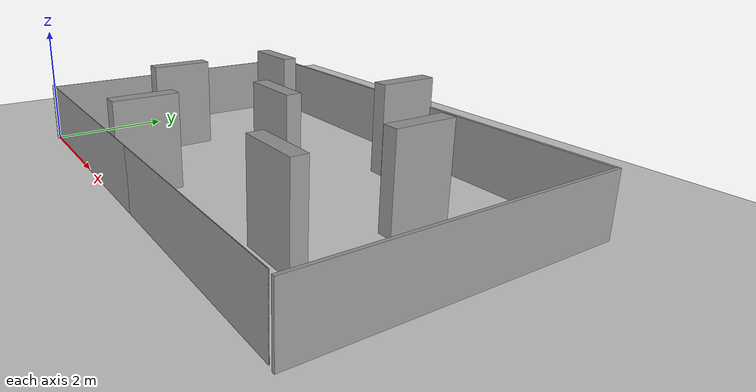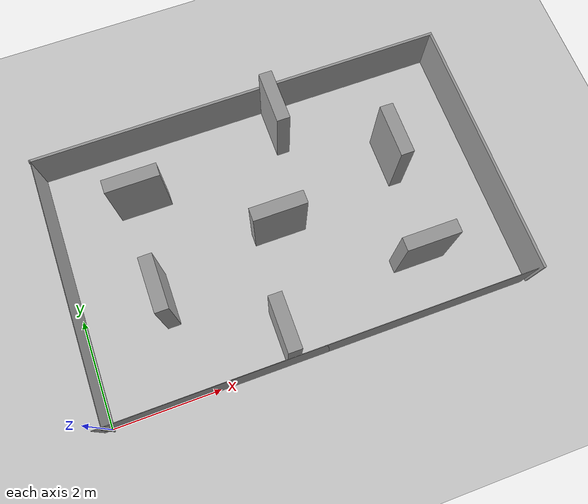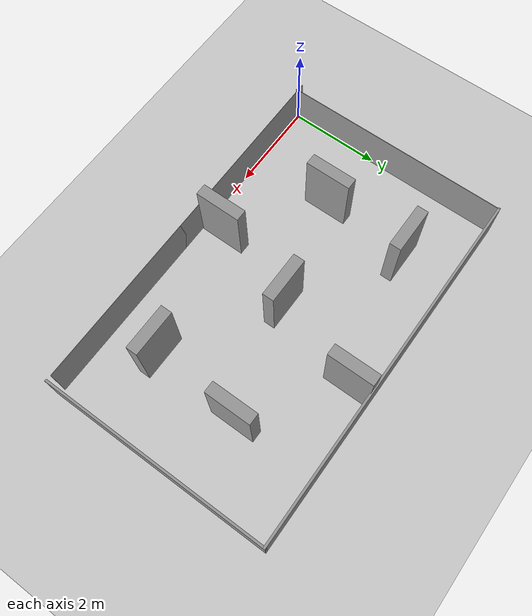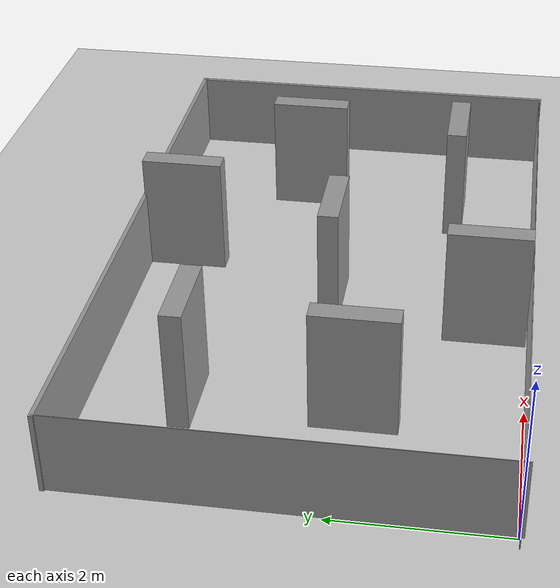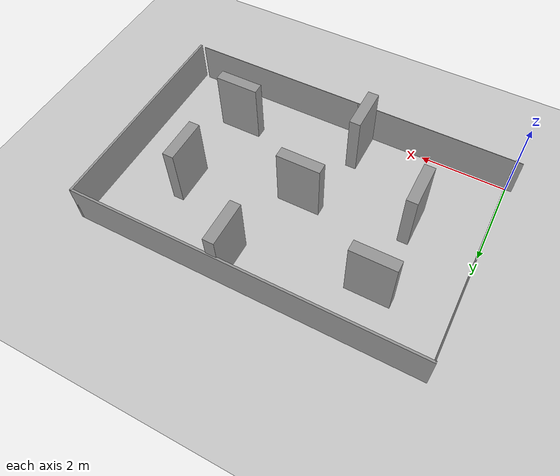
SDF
<sdf version="1.6">
 <world name="default">
  <light name="sun" type="directional">
   <pose>0 0 10 0 -0 0</pose>
   <diffuse>0.8 0.8 0.8 1</diffuse>
   <specular>0.1 0.1 0.1 1</specular>
   <attenuation>
    <range>1000</range>
    <constant>0.9</constant>
    <linear>0.01</linear>
    <quadratic>0.001</quadratic>
   </attenuation>
   <direction>-0.5 0.5 -1</direction>
  </light>
  <model name="ground_plane">
   <static>1</static>
   <link name="link">
    <collision name="collision">
     <geometry><plane><normal>0 0 1</normal><size>100 100</size></plane></geometry>
     <surface><friction><ode><mu>100</mu><mu2>50</mu2></ode></friction></surface>
    </collision>
    <visual name="visual">
     <cast_shadows>0</cast_shadows>
     <geometry><plane><normal>0 0 1</normal><size>100 100</size></plane></geometry>
     <material>
      <script><uri>file://media/materials/scripts/gazebo.material</uri><name>Gazebo/Grey</name></script>
     </material>
    </visual>
   </link>
  </model>
  <gravity>0 0 -9.8</gravity>
  <magnetic_field>6e-06 2.3e-05 -4.2e-05</magnetic_field>
  <atmosphere type="adiabatic"/>
  <physics name="default_physics" default="0" type="ode">
   <max_step_size>0.001</max_step_size>
   <real_time_factor>1</real_time_factor>
   <real_time_update_rate>1000</real_time_update_rate>
  </physics>
  <scene><ambient>0.4 0.4 0.4 1</ambient><background>0.7 0.7 0.7 1</background><shadows>1</shadows></scene>
  <spherical_coordinates>
   <surface_model>EARTH_WGS84</surface_model>
   <latitude_deg>0</latitude_deg>
   <longitude_deg>0</longitude_deg>
   <elevation>0</elevation>
   <heading_deg>0</heading_deg>
  </spherical_coordinates>
  <model name="walls_icra">
   <model name="icra_walls">
    <pose>1.46906 1.7291 0 0 -0 0</pose>
    <link name="Wall_0">
     <collision name="Wall_0_Collision">
      <geometry><box><size>8 0.05 1</size></box></geometry>
      <pose>0 0 0.5 0 -0 0</pose>
     </collision>
     <visual name="Wall_0_Visual">
      <pose>0 0 0.5 0 -0 0</pose>
      <geometry><box><size>8 0.05 1</size></box></geometry>
      <material>
       <script><uri>file://media/materials/scripts/gazebo.material</uri><name>Gazebo/Grey</name></script>
       <ambient>1 1 1 1</ambient>
      </material>
     </visual>
     <pose>0.07 2.485 0 0 -0 0</pose>
    </link>
    <link name="Wall_11">
     <collision name="Wall_11_Collision">
      <geometry><box><size>1 0.25 1.5</size></box></geometry>
      <pose>0 0 0.75 0 -0 0</pose>
     </collision>
     <visual name="Wall_11_Visual">
      <pose>0 0 0.75 0 -0 0</pose>
      <geometry><box><size>1 0.25 1.5</size></box></geometry>
      <material>
       <script><uri>file://media/materials/scripts/gazebo.material</uri><name>Gazebo/Grey</name></script>
       <ambient>1 1 1 1</ambient>
      </material>
     </visual>
     <pose>0.012 -0.0245 0 0 -0 0</pose>
    </link>
    <link name="Wall_13">
     <collision name="Wall_13_Collision">
      <geometry><box><size>1 0.25 1.5</size></box></geometry>
      <pose>0 0 0.75 0 -0 0</pose>
     </collision>
     <visual name="Wall_13_Visual">
      <pose>0 0 0.75 0 -0 0</pose>
      <geometry><box><size>1 0.25 1.5</size></box></geometry>
      <material>
       <script><uri>file://media/materials/scripts/gazebo.material</uri><name>Gazebo/Grey</name></script>
       <ambient>1 1 1 1</ambient>
      </material>
     </visual>
     <pose>-0.559 -1.941 0 0 0 -1.5708</pose>
    </link>
    <link name="Wall_15">
     <collision name="Wall_15_Collision">
      <geometry><box><size>1 0.25 1.5</size></box></geometry>
      <pose>0 0 0.75 0 -0 0</pose>
     </collision>
     <visual name="Wall_15_Visual">
      <pose>0 0 0.75 0 -0 0</pose>
      <geometry><box><size>1 0.25 1.5</size></box></geometry>
      <material>
       <script><uri>file://media/materials/scripts/gazebo.material</uri><name>Gazebo/Grey</name></script>
       <ambient>1 1 1 1</ambient>
      </material>
     </visual>
     <pose>-2.387 -0.595 0 0 0 -1.5708</pose>
    </link>
    <link name="Wall_18">
     <collision name="Wall_18_Collision">
      <geometry><box><size>1 0.25 1.5</size></box></geometry>
      <pose>0 0 0.75 0 -0 0</pose>
     </collision>
     <visual name="Wall_18_Visual">
      <pose>0 0 0.75 0 -0 0</pose>
      <geometry><box><size>1 0.25 1.5</size></box></geometry>
      <material>
       <script><uri>file://media/materials/scripts/gazebo.material</uri><name>Gazebo/Grey</name></script>
       <ambient>1 1 1 1</ambient>
      </material>
     </visual>
     <pose>-2.231 1.3205 0 0 -0 0</pose>
    </link>
    <link name="Wall_2">
     <collision name="Wall_2_Collision">
      <geometry><box><size>5 0.05 1</size></box></geometry>
      <pose>0 0 0.5 0 -0 0</pose>
     </collision>
     <visual name="Wall_2_Visual">
      <pose>0 0 0.5 0 -0 0</pose>
      <geometry><box><size>5 0.05 1</size></box></geometry>
      <material>
       <script><uri>file://media/materials/scripts/gazebo.material</uri><name>Gazebo/Grey</name></script>
       <ambient>1 1 1 1</ambient>
      </material>
     </visual>
     <pose>4.045 0.01 0 0 0 -1.5708</pose>
    </link>
    <link name="Wall_20">
     <collision name="Wall_20_Collision">
      <geometry><box><size>1 0.25 1.5</size></box></geometry>
      <pose>0 0 0.75 0 -0 0</pose>
     </collision>
     <visual name="Wall_20_Visual">
      <pose>0 0 0.75 0 -0 0</pose>
      <geometry><box><size>1 0.25 1.5</size></box></geometry>
      <material>
       <script><uri>file://media/materials/scripts/gazebo.material</uri><name>Gazebo/Grey</name></script>
       <ambient>1 1 1 1</ambient>
      </material>
     </visual>
     <pose>2.4775 0.624 0 0 0 -1.5708</pose>
    </link>
    <link name="Wall_22">
     <collision name="Wall_22_Collision">
      <geometry><box><size>1 0.25 1.5</size></box></geometry>
      <pose>0 0 0.75 0 -0 0</pose>
     </collision>
     <visual name="Wall_22_Visual">
      <pose>0 0 0.75 0 -0 0</pose>
      <geometry><box><size>1 0.25 1.5</size></box></geometry>
      <material>
       <script><uri>file://media/materials/scripts/gazebo.material</uri><name>Gazebo/Grey</name></script>
       <ambient>1 1 1 1</ambient>
      </material>
     </visual>
     <pose>2.2775 -1.3935 0 0 -0 0</pose>
    </link>
    <link name="Wall_24">
     <collision name="Wall_24_Collision">
      <geometry><box><size>1 0.25 1.5</size></box></geometry>
      <pose>0 0 0.75 0 -0 0</pose>
     </collision>
     <visual name="Wall_24_Visual">
      <pose>0 0 0.75 0 -0 0</pose>
      <geometry><box><size>1 0.25 1.5</size></box></geometry>
      <material>
       <script><uri>file://media/materials/scripts/gazebo.material</uri><name>Gazebo/Grey</name></script>
       <ambient>1 1 1 1</ambient>
      </material>
     </visual>
     <pose>0.649 1.981 0 0 0 -1.5708</pose>
    </link>
    <link name="Wall_5">
     <collision name="Wall_5_Collision">
      <geometry><box><size>7.86 0.01 1</size></box></geometry>
      <pose>0 0 0.5 0 -0 0</pose>
     </collision>
     <visual name="Wall_5_Visual">
      <pose>0 0 0.5 0 -0 0</pose>
      <geometry><box><size>7.86 0.01 1</size></box></geometry>
      <material>
       <script><uri>file://media/materials/scripts/gazebo.material</uri><name>Gazebo/Grey</name></script>
       <ambient>1 1 1 1</ambient>
      </material>
     </visual>
     <pose>0 -2.465 0 0 -0 0</pose>
    </link>
    <link name="Wall_6">
     <collision name="Wall_6_Collision">
      <geometry><box><size>8 0.01 1</size></box></geometry>
      <pose>0 0 0.5 0 -0 0</pose>
     </collision>
     <visual name="Wall_6_Visual">
      <pose>0 0 0.5 0 -0 0</pose>
      <geometry><box><size>8 0.01 1</size></box></geometry>
      <material>
       <script><uri>file://media/materials/scripts/gazebo.material</uri><name>Gazebo/Grey</name></script>
       <ambient>1 1 1 1</ambient>
      </material>
     </visual>
     <pose>-0.07 -2.465 0 0 -0 3.14159</pose>
    </link>
    <link name="Wall_9">
     <collision name="Wall_9_Collision">
      <geometry><box><size>5 0.01 1</size></box></geometry>
      <pose>0 0 0.5 0 -0 0</pose>
     </collision>
     <visual name="Wall_9_Visual">
      <pose>0 0 0.5 0 -0 0</pose>
      <geometry><box><size>5 0.01 1</size></box></geometry>
      <material>
       <script><uri>file://media/materials/scripts/gazebo.material</uri><name>Gazebo/Grey</name></script>
       <ambient>1 1 1 1</ambient>
      </material>
     </visual>
     <pose>-3.905 -0.01 0 0 0 -1.5708</pose>
    </link>
    <static>1</static>
   </model>
   <model name="icra_walls_new"><static>0</static><pose>-1.46907 -1.7291 0 0 -0 0</pose></model>
   <static>0</static>
   <pose>2.46907 0.7291 0 0 -0 0</pose>
  </model>
 </world>
</sdf>
